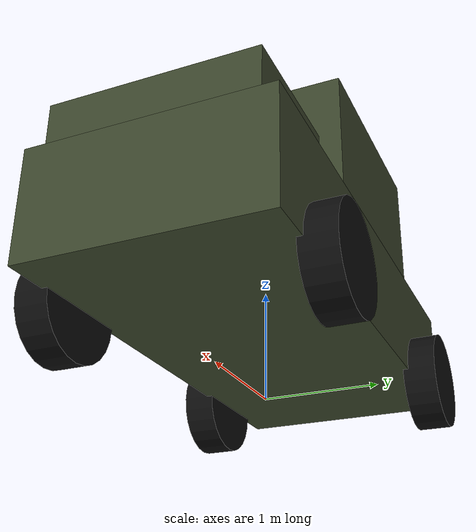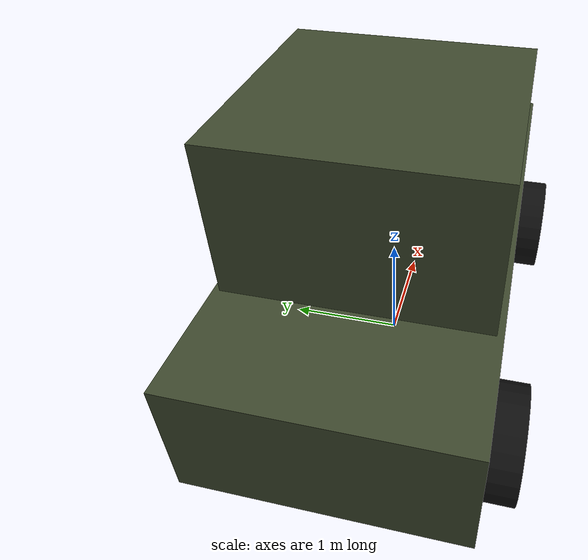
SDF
<?xml version="1.0"?>
<sdf version="1.9">
  <model name="military_vehicle">
    <static>true</static>

    <link name="body">
      <!-- Main body / chassis -->
      <visual name="chassis_visual">
        <pose>0 0 0.95 0 0 0</pose>
        <geometry>
          <box>
            <size>4.5 2.1 1.0</size>
          </box>
        </geometry>
        <material>
          <ambient>0.23 0.27 0.17 1</ambient>
          <diffuse>0.23 0.27 0.17 1</diffuse>
          <specular>0.1 0.1 0.1 1</specular>
        </material>
      </visual>
      <collision name="chassis_collision">
        <pose>0 0 0.95 0 0 0</pose>
        <geometry>
          <box>
            <size>4.5 2.1 1.0</size>
          </box>
        </geometry>
      </collision>

      <!-- Cabin / upper structure -->
      <visual name="cabin_visual">
        <pose>-0.3 0 2.05 0 0 0</pose>
        <geometry>
          <box>
            <size>2.0 2.0 1.2</size>
          </box>
        </geometry>
        <material>
          <ambient>0.23 0.27 0.17 1</ambient>
          <diffuse>0.23 0.27 0.17 1</diffuse>
          <specular>0.1 0.1 0.1 1</specular>
        </material>
      </visual>
      <collision name="cabin_collision">
        <pose>-0.3 0 2.05 0 0 0</pose>
        <geometry>
          <box>
            <size>2.0 2.0 1.2</size>
          </box>
        </geometry>
      </collision>

      <!-- Hood / engine block -->
      <visual name="hood_visual">
        <pose>1.6 0 1.65 0 0 0</pose>
        <geometry>
          <box>
            <size>1.2 1.8 0.4</size>
          </box>
        </geometry>
        <material>
          <ambient>0.23 0.27 0.17 1</ambient>
          <diffuse>0.23 0.27 0.17 1</diffuse>
          <specular>0.1 0.1 0.1 1</specular>
        </material>
      </visual>
      <collision name="hood_collision">
        <pose>1.6 0 1.65 0 0 0</pose>
        <geometry>
          <box>
            <size>1.2 1.8 0.4</size>
          </box>
        </geometry>
      </collision>

      <!-- Front-left wheel -->
      <visual name="wheel_fl_visual">
        <pose>1.4 1.15 0.45 1.5708 0 0</pose>
        <geometry>
          <cylinder>
            <radius>0.45</radius>
            <length>0.3</length>
          </cylinder>
        </geometry>
        <material>
          <ambient>0.05 0.05 0.05 1</ambient>
          <diffuse>0.05 0.05 0.05 1</diffuse>
          <specular>0.1 0.1 0.1 1</specular>
        </material>
      </visual>

      <!-- Front-right wheel -->
      <visual name="wheel_fr_visual">
        <pose>1.4 -1.15 0.45 1.5708 0 0</pose>
        <geometry>
          <cylinder>
            <radius>0.45</radius>
            <length>0.3</length>
          </cylinder>
        </geometry>
        <material>
          <ambient>0.05 0.05 0.05 1</ambient>
          <diffuse>0.05 0.05 0.05 1</diffuse>
          <specular>0.1 0.1 0.1 1</specular>
        </material>
      </visual>

      <!-- Rear-left wheel -->
      <visual name="wheel_rl_visual">
        <pose>-1.4 1.15 0.45 1.5708 0 0</pose>
        <geometry>
          <cylinder>
            <radius>0.45</radius>
            <length>0.3</length>
          </cylinder>
        </geometry>
        <material>
          <ambient>0.05 0.05 0.05 1</ambient>
          <diffuse>0.05 0.05 0.05 1</diffuse>
          <specular>0.1 0.1 0.1 1</specular>
        </material>
      </visual>

      <!-- Rear-right wheel -->
      <visual name="wheel_rr_visual">
        <pose>-1.4 -1.15 0.45 1.5708 0 0</pose>
        <geometry>
          <cylinder>
            <radius>0.45</radius>
            <length>0.3</length>
          </cylinder>
        </geometry>
        <material>
          <ambient>0.05 0.05 0.05 1</ambient>
          <diffuse>0.05 0.05 0.05 1</diffuse>
          <specular>0.1 0.1 0.1 1</specular>
        </material>
      </visual>
    </link>
  </model>
</sdf>
